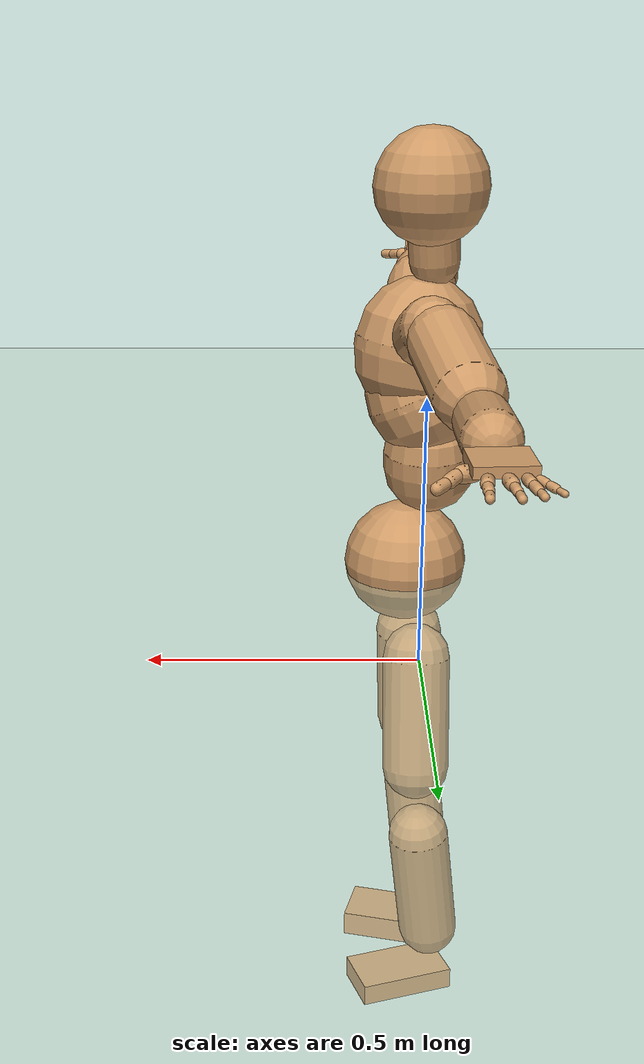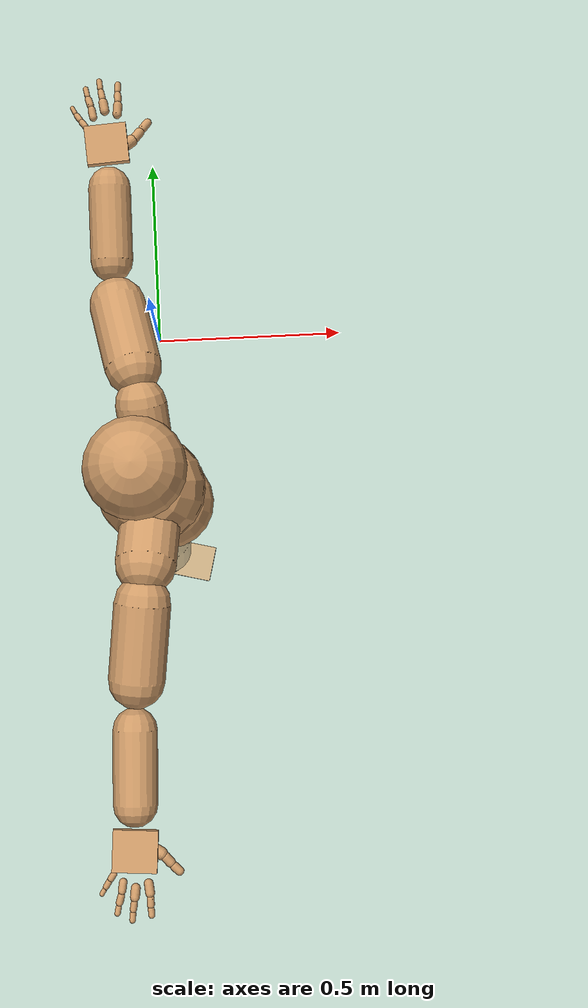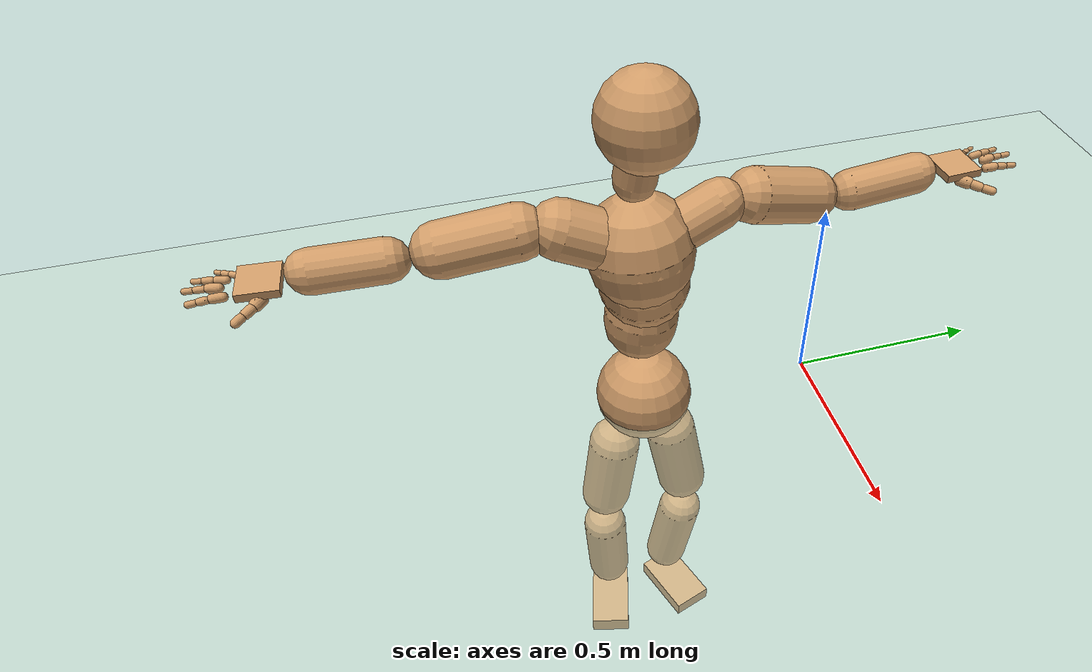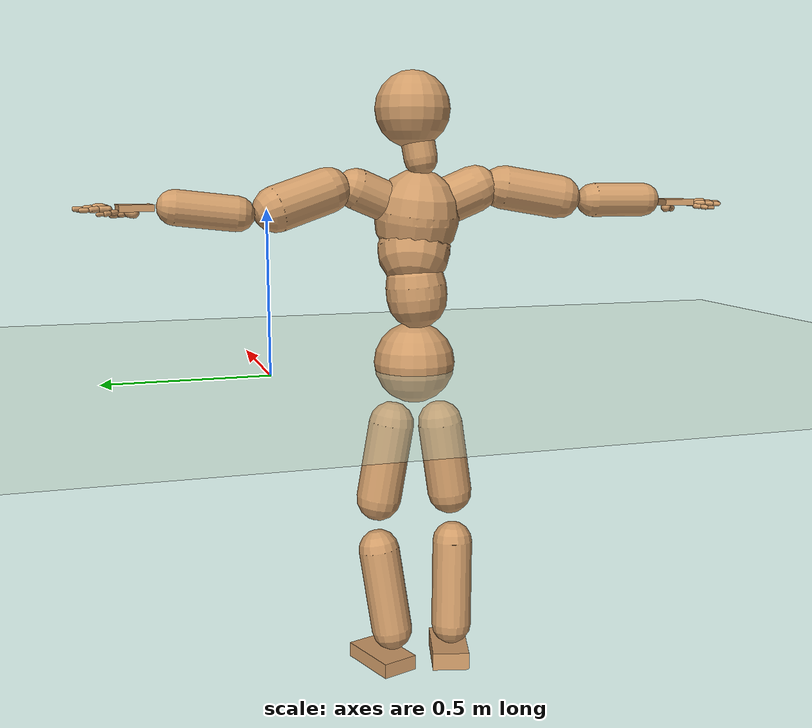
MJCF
<mujoco model="humanoid">
  <compiler coordinate="local" angle="radian"/>
  <default>
    <joint damping="0.0" armature="0.01" stiffness="0.0" limited="true"/>
    <geom conaffinity="1" condim="3" contype="7" margin="0.001" rgba="0.8 0.6 .4 1"/>
  </default>
  <asset>
    <texture type="skybox" builtin="gradient" rgb1=".4 .5 .6" rgb2="0 0 0" width="100" height="100"/>
    <texture builtin="flat" height="1278" mark="cross" markrgb="1 1 1" name="texgeom" random="0.01" rgb1="0.8 0.6 0.4" rgb2="0.8 0.6 0.4" type="cube" width="127"/>
    <texture builtin="checker" height="100" name="texplane" rgb1="0 0 0" rgb2="0.8 0.8 0.8" type="2d" width="100"/>
    <material name="MatPlane" reflectance="0.5" shininess="1" specular="1" texrepeat="60 60" texture="texplane"/>
    <material name="geom" texture="texgeom" texuniform="true"/>
  </asset>
  <worldbody>
    <light cutoff="100" diffuse="1 1 1" dir="-0 0 -1.3" directional="true" exponent="1" pos="0 0 1.3" specular=".1 .1 .1"/>
    <geom conaffinity="1" condim="3" name="floor" pos="0 0 0" rgba="0.8 0.9 0.8 1" size="100 100 .2" type="plane" material="MatPlane"/>
    <body name="Pelvis" pos="0.0019 -0.4553 0.0202">
      <freejoint name="Pelvis"/>
      <geom type="sphere" contype="1" conaffinity="1" density="500" size="0.1269" pos="0.0000 0.0000 0.0000" name="Pelvis"/>
      <body name="L_Hip" pos="-0.0236 0.0682 -0.1093">
        <joint name="L_Hip_x" type="hinge" pos="0 0 0" axis="1 0 0" stiffness="800" damping="80" armature="0.02" range="-180.0000 180.0000"/>
        <joint name="L_Hip_y" type="hinge" pos="0 0 0" axis="0 1 0" stiffness="800" damping="80" armature="0.02" range="-180.0000 180.0000"/>
        <joint name="L_Hip_z" type="hinge" pos="0 0 0" axis="0 0 1" stiffness="800" damping="80" armature="0.02" range="-180.0000 180.0000"/>
        <geom type="capsule" contype="1" conaffinity="1" density="500" fromto="-0.0007 0.0142 -0.0795 -0.0027 0.0569 -0.3178" size="0.0708" name="L_Hip"/>
        <body name="L_Knee" pos="-0.0034 0.0712 -0.3973">
          <joint name="L_Knee_x" type="hinge" pos="0 0 0" axis="1 0 0" stiffness="800" damping="80" armature="0.02" range="-180.0000 180.0000"/>
          <joint name="L_Knee_y" type="hinge" pos="0 0 0" axis="0 1 0" stiffness="800" damping="80" armature="0.02" range="-180.0000 180.0000"/>
          <joint name="L_Knee_z" type="hinge" pos="0 0 0" axis="0 0 1" stiffness="800" damping="80" armature="0.02" range="-180.0000 180.0000"/>
          <geom type="capsule" contype="1" conaffinity="1" density="500" fromto="-0.0100 -0.0111 -0.0875 -0.0402 -0.0443 -0.3499" size="0.0644" name="L_Knee"/>
          <body name="L_Ankle" pos="-0.0502 -0.0554 -0.4373">
            <joint name="L_Ankle_x" type="hinge" pos="0 0 0" axis="1 0 0" stiffness="800" damping="80" armature="0.02" range="-180.0000 180.0000"/>
            <joint name="L_Ankle_y" type="hinge" pos="0 0 0" axis="0 1 0" stiffness="800" damping="80" armature="0.02" range="-180.0000 180.0000"/>
            <joint name="L_Ankle_z" type="hinge" pos="0 0 0" axis="0 0 1" stiffness="800" damping="80" armature="0.02" range="-180.0000 180.0000"/>
            <geom type="box" contype="1" conaffinity="1" density="500" pos="0.0745 0.0256 -0.0319" size="0.1034 0.0592 0.0237" quat="0.9864 0.0000 0.0000 0.1645" name="L_Ankle"/>
            <body name="L_Toe" pos="0.1489 0.0511 -0.0639">
              <joint name="L_Toe_x" type="hinge" pos="0 0 0" axis="1 0 0" stiffness="500" damping="50" armature="0.02" range="-180.0000 180.0000"/>
              <joint name="L_Toe_y" type="hinge" pos="0 0 0" axis="0 1 0" stiffness="500" damping="50" armature="0.02" range="-180.0000 180.0000"/>
              <joint name="L_Toe_z" type="hinge" pos="0 0 0" axis="0 0 1" stiffness="500" damping="50" armature="0.02" range="-180.0000 180.0000"/>
              <geom type="box" contype="1" conaffinity="1" density="500" pos="0.0000 0.0000 0.0317" size="0.0012 0.0028 0.0012" quat="0.9857 0.0000 0.0000 0.1684" name="L_Toe"/>
            </body>
          </body>
        </body>
      </body>
      <body name="R_Hip" pos="-0.0147 -0.0708 -0.1215">
        <joint name="R_Hip_x" type="hinge" pos="0 0 0" axis="1 0 0" stiffness="800" damping="80" armature="0.02" range="-180.0000 180.0000"/>
        <joint name="R_Hip_y" type="hinge" pos="0 0 0" axis="0 1 0" stiffness="800" damping="80" armature="0.02" range="-180.0000 180.0000"/>
        <joint name="R_Hip_z" type="hinge" pos="0 0 0" axis="0 0 1" stiffness="800" damping="80" armature="0.02" range="-180.0000 180.0000"/>
        <geom type="capsule" contype="1" conaffinity="1" density="500" fromto="-0.0027 -0.0103 -0.0758 -0.0106 -0.0413 -0.3033" size="0.0708" name="R_Hip"/>
        <body name="R_Knee" pos="-0.0133 -0.0517 -0.3792">
          <joint name="R_Knee_x" type="hinge" pos="0 0 0" axis="1 0 0" stiffness="800" damping="80" armature="0.02" range="-180.0000 180.0000"/>
          <joint name="R_Knee_y" type="hinge" pos="0 0 0" axis="0 1 0" stiffness="800" damping="80" armature="0.02" range="-180.0000 180.0000"/>
          <joint name="R_Knee_z" type="hinge" pos="0 0 0" axis="0 0 1" stiffness="800" damping="80" armature="0.02" range="-180.0000 180.0000"/>
          <geom type="capsule" contype="1" conaffinity="1" density="500" fromto="-0.0097 0.0041 -0.0902 -0.0387 0.0166 -0.3608" size="0.0643" name="R_Knee"/>
          <body name="R_Ankle" pos="-0.0484 0.0207 -0.451">
            <joint name="R_Ankle_x" type="hinge" pos="0 0 0" axis="1 0 0" stiffness="800" damping="80" armature="0.02" range="-180.0000 180.0000"/>
            <joint name="R_Ankle_y" type="hinge" pos="0 0 0" axis="0 1 0" stiffness="800" damping="80" armature="0.02" range="-180.0000 180.0000"/>
            <joint name="R_Ankle_z" type="hinge" pos="0 0 0" axis="0 0 1" stiffness="800" damping="80" armature="0.02" range="-180.0000 180.0000"/>
            <geom type="box" contype="1" conaffinity="1" density="500" pos="0.0780 -0.0197 -0.0312" size="0.1035 0.0592 0.0284" quat="0.9923 0.0000 0.0000 -0.1237" name="R_Ankle"/>
            <body name="R_Toe" pos="0.1559 -0.0395 -0.0623">
              <joint name="R_Toe_x" type="hinge" pos="0 0 0" axis="1 0 0" stiffness="500" damping="50" armature="0.02" range="-180.0000 180.0000"/>
              <joint name="R_Toe_y" type="hinge" pos="0 0 0" axis="0 1 0" stiffness="500" damping="50" armature="0.02" range="-180.0000 180.0000"/>
              <joint name="R_Toe_z" type="hinge" pos="0 0 0" axis="0 0 1" stiffness="500" damping="50" armature="0.02" range="-180.0000 180.0000"/>
              <geom type="box" contype="1" conaffinity="1" density="500" pos="0.0000 0.0000 0.0262" size="0.0011 0.0028 0.0012" quat="0.9932 0.0000 0.0000 -0.1162" name="R_Toe"/>
            </body>
          </body>
        </body>
      </body>
      <body name="Torso" pos="-0.0468 -0.0027 0.1324">
        <joint name="Torso_x" type="hinge" pos="0 0 0" axis="1 0 0" stiffness="1000" damping="100" armature="0.02" range="-180.0000 180.0000"/>
        <joint name="Torso_y" type="hinge" pos="0 0 0" axis="0 1 0" stiffness="1000" damping="100" armature="0.02" range="-180.0000 180.0000"/>
        <joint name="Torso_z" type="hinge" pos="0 0 0" axis="0 0 1" stiffness="1000" damping="100" armature="0.02" range="-180.0000 180.0000"/>
        <geom type="capsule" contype="1" conaffinity="1" density="500" fromto="0.0036 0.0107 0.1130 0.0024 0.0071 0.0754" size="0.0935" name="Torso"/>
        <body name="Spine" pos="0.006 0.0178 0.1884">
          <joint name="Spine_x" type="hinge" pos="0 0 0" axis="1 0 0" stiffness="1000" damping="100" armature="0.02" range="-180.0000 180.0000"/>
          <joint name="Spine_y" type="hinge" pos="0 0 0" axis="0 1 0" stiffness="1000" damping="100" armature="0.02" range="-180.0000 180.0000"/>
          <joint name="Spine_z" type="hinge" pos="0 0 0" axis="0 0 1" stiffness="1000" damping="100" armature="0.02" range="-180.0000 180.0000"/>
          <geom type="capsule" contype="1" conaffinity="1" density="500" fromto="0.0193 -0.0080 0.0424 0.0129 -0.0053 0.0283" size="0.1122" name="Spine"/>
          <body name="Chest" pos="0.0322 -0.0133 0.0707">
            <joint name="Chest_x" type="hinge" pos="0 0 0" axis="1 0 0" stiffness="1000" damping="100" armature="0.02" range="-180.0000 180.0000"/>
            <joint name="Chest_y" type="hinge" pos="0 0 0" axis="0 1 0" stiffness="1000" damping="100" armature="0.02" range="-180.0000 180.0000"/>
            <joint name="Chest_z" type="hinge" pos="0 0 0" axis="0 0 1" stiffness="1000" damping="100" armature="0.02" range="-180.0000 180.0000"/>
            <geom type="capsule" contype="1" conaffinity="1" density="500" fromto="-0.0102 -0.0048 0.0763 -0.0068 -0.0032 0.0509" size="0.1299" name="Chest"/>
            <body name="Neck" pos="-0.0375 -0.0144 0.1997">
              <joint name="Neck_x" type="hinge" pos="0 0 0" axis="1 0 0" stiffness="500" damping="50" armature="0.02" range="-180.0000 180.0000"/>
              <joint name="Neck_y" type="hinge" pos="0 0 0" axis="0 1 0" stiffness="500" damping="50" armature="0.02" range="-180.0000 180.0000"/>
              <joint name="Neck_z" type="hinge" pos="0 0 0" axis="0 0 1" stiffness="500" damping="50" armature="0.02" range="-180.0000 180.0000"/>
              <geom type="capsule" contype="1" conaffinity="1" density="500" fromto="0.0029 0.0056 0.0363 0.0118 0.0224 0.1453" size="0.051" name="Neck"/>
              <body name="Head" pos="0.0147 0.028 0.1817">
                <joint name="Head_x" type="hinge" pos="0 0 0" axis="1 0 0" stiffness="500" damping="50" armature="0.02" range="-180.0000 180.0000"/>
                <joint name="Head_y" type="hinge" pos="0 0 0" axis="0 1 0" stiffness="500" damping="50" armature="0.02" range="-180.0000 180.0000"/>
                <joint name="Head_z" type="hinge" pos="0 0 0" axis="0 0 1" stiffness="500" damping="50" armature="0.02" range="-180.0000 180.0000"/>
                <geom type="sphere" contype="1" conaffinity="1" density="500" size="0.1137" pos="0.0000 0.0000 0.0000" name="Head"/>
              </body>
            </body>
            <body name="L_Thorax" pos="-0.0054 0.0493 0.0905">
              <joint name="L_Thorax_x" type="hinge" pos="0 0 0" axis="1 0 0" stiffness="500" damping="50" armature="0.02" range="-180.0000 180.0000"/>
              <joint name="L_Thorax_y" type="hinge" pos="0 0 0" axis="0 1 0" stiffness="500" damping="50" armature="0.02" range="-180.0000 180.0000"/>
              <joint name="L_Thorax_z" type="hinge" pos="0 0 0" axis="0 0 1" stiffness="500" damping="50" armature="0.02" range="-180.0000 180.0000"/>
              <geom type="capsule" contype="1" conaffinity="1" density="500" fromto="-0.0032 0.0347 0.0143 -0.0130 0.1390 0.0572" size="0.0611" name="L_Thorax"/>
              <body name="L_Shoulder" pos="-0.0162 0.1737 0.0715">
                <joint name="L_Shoulder_x" type="hinge" pos="0 0 0" axis="1 0 0" stiffness="500" damping="50" armature="0.02" range="-180.0000 180.0000"/>
                <joint name="L_Shoulder_y" type="hinge" pos="0 0 0" axis="0 1 0" stiffness="500" damping="50" armature="0.02" range="-180.0000 180.0000"/>
                <joint name="L_Shoulder_z" type="hinge" pos="0 0 0" axis="0 0 1" stiffness="500" damping="50" armature="0.02" range="-180.0000 180.0000"/>
                <geom type="capsule" contype="1" conaffinity="1" density="500" fromto="-0.0116 0.0543 -0.0177 -0.0464 0.2171 -0.0709" size="0.0675" name="L_Shoulder"/>
                <body name="L_Elbow" pos="-0.058 0.2714 -0.0886">
                  <joint name="L_Elbow_x" type="hinge" pos="0 0 0" axis="1 0 0" stiffness="500" damping="50" armature="0.02" range="-720.0000 720.0000"/>
                  <joint name="L_Elbow_y" type="hinge" pos="0 0 0" axis="0 1 0" stiffness="500" damping="50" armature="0.02" range="-720.0000 720.0000"/>
                  <joint name="L_Elbow_z" type="hinge" pos="0 0 0" axis="0 0 1" stiffness="500" damping="50" armature="0.02" range="-720.0000 720.0000"/>
                  <geom type="capsule" contype="1" conaffinity="1" density="500" fromto="0.0010 0.0580 0.0065 0.0038 0.2319 0.0260" size="0.051" name="L_Elbow"/>
                  <body name="L_Wrist" pos="0.0048 0.2899 0.0324">
                    <joint name="L_Wrist_x" type="hinge" pos="0 0 0" axis="1 0 0" stiffness="300" damping="30" armature="0.02" range="-180.0000 180.0000"/>
                    <joint name="L_Wrist_y" type="hinge" pos="0 0 0" axis="0 1 0" stiffness="300" damping="30" armature="0.02" range="-180.0000 180.0000"/>
                    <joint name="L_Wrist_z" type="hinge" pos="0 0 0" axis="0 0 1" stiffness="300" damping="30" armature="0.02" range="-180.0000 180.0000"/>
                    <geom type="box" contype="1" conaffinity="1" density="500" pos="-0.0033 0.0509 -0.0060" size="0.0481 0.0508 0.0095" quat="0.7298 0.0000 0.0000 -0.6837" name="L_Wrist"/>
                    <body name="L_Index1" pos="0.024 0.1195 -0.0086">
                      <joint name="L_Index1_x" type="hinge" pos="0 0 0" axis="1 0 0" stiffness="100" damping="10" armature="0.02" range="-180.0000 180.0000"/>
                      <joint name="L_Index1_y" type="hinge" pos="0 0 0" axis="0 1 0" stiffness="100" damping="10" armature="0.02" range="-180.0000 180.0000"/>
                      <joint name="L_Index1_z" type="hinge" pos="0 0 0" axis="0 0 1" stiffness="100" damping="10" armature="0.02" range="-180.0000 180.0000"/>
                      <geom type="capsule" contype="1" conaffinity="1" density="500" fromto="0.0008 0.0071 0.0004 0.0032 0.0285 0.0017" size="0.0108" name="L_Index1"/>
                      <body name="L_Index2" pos="0.004 0.0357 0.0022">
                        <joint name="L_Index2_x" type="hinge" pos="0 0 0" axis="1 0 0" stiffness="100" damping="10" armature="0.02" range="-180.0000 180.0000"/>
                        <joint name="L_Index2_y" type="hinge" pos="0 0 0" axis="0 1 0" stiffness="100" damping="10" armature="0.02" range="-180.0000 180.0000"/>
                        <joint name="L_Index2_z" type="hinge" pos="0 0 0" axis="0 0 1" stiffness="100" damping="10" armature="0.02" range="-180.0000 180.0000"/>
                        <geom type="capsule" contype="1" conaffinity="1" density="500" fromto="-0.0001 0.0050 -0.0006 -0.0003 0.0200 -0.0024" size="0.0087" name="L_Index2"/>
                        <body name="L_Index3" pos="-0.0003 0.025 -0.003">
                          <joint name="L_Index3_x" type="hinge" pos="0 0 0" axis="1 0 0" stiffness="100" damping="10" armature="0.02" range="-180.0000 180.0000"/>
                          <joint name="L_Index3_y" type="hinge" pos="0 0 0" axis="0 1 0" stiffness="100" damping="10" armature="0.02" range="-180.0000 180.0000"/>
                          <joint name="L_Index3_z" type="hinge" pos="0 0 0" axis="0 0 1" stiffness="100" damping="10" armature="0.02" range="-180.0000 180.0000"/>
                          <geom type="capsule" contype="1" conaffinity="1" density="500" fromto="0.0003 0.0054 -0.0002 0.0013 0.0216 -0.0008" size="0.0073" name="L_Index3"/>
                        </body>
                      </body>
                    </body>
                    <body name="L_Middle1" pos="-0.0041 0.1282 -0.0049">
                      <joint name="L_Middle1_x" type="hinge" pos="0 0 0" axis="1 0 0" stiffness="100" damping="10" armature="0.02" range="-180.0000 180.0000"/>
                      <joint name="L_Middle1_y" type="hinge" pos="0 0 0" axis="0 1 0" stiffness="100" damping="10" armature="0.02" range="-180.0000 180.0000"/>
                      <joint name="L_Middle1_z" type="hinge" pos="0 0 0" axis="0 0 1" stiffness="100" damping="10" armature="0.02" range="-180.0000 180.0000"/>
                      <geom type="capsule" contype="1" conaffinity="1" density="500" fromto="-0.0009 0.0068 0.0002 -0.0038 0.0271 0.0007" size="0.011" name="L_Middle1"/>
                      <body name="L_Middle2" pos="-0.0047 0.0339 0.0009">
                        <joint name="L_Middle2_x" type="hinge" pos="0 0 0" axis="1 0 0" stiffness="100" damping="10" armature="0.02" range="-180.0000 180.0000"/>
                        <joint name="L_Middle2_y" type="hinge" pos="0 0 0" axis="0 1 0" stiffness="100" damping="10" armature="0.02" range="-180.0000 180.0000"/>
                        <joint name="L_Middle2_z" type="hinge" pos="0 0 0" axis="0 0 1" stiffness="100" damping="10" armature="0.02" range="-180.0000 180.0000"/>
                        <geom type="capsule" contype="1" conaffinity="1" density="500" fromto="-0.0009 0.0052 -0.0006 -0.0037 0.0207 -0.0022" size="0.008" name="L_Middle2"/>
                        <body name="L_Middle3" pos="-0.0047 0.0259 -0.0028">
                          <joint name="L_Middle3_x" type="hinge" pos="0 0 0" axis="1 0 0" stiffness="100" damping="10" armature="0.02" range="-180.0000 180.0000"/>
                          <joint name="L_Middle3_y" type="hinge" pos="0 0 0" axis="0 1 0" stiffness="100" damping="10" armature="0.02" range="-180.0000 180.0000"/>
                          <joint name="L_Middle3_z" type="hinge" pos="0 0 0" axis="0 0 1" stiffness="100" damping="10" armature="0.02" range="-180.0000 180.0000"/>
                          <geom type="capsule" contype="1" conaffinity="1" density="500" fromto="-0.0005 0.0056 -0.0002 -0.0021 0.0223 -0.0006" size="0.007" name="L_Middle3"/>
                        </body>
                      </body>
                    </body>
                    <body name="L_Pinky1" pos="-0.0523 0.0991 -0.0153">
                      <joint name="L_Pinky1_x" type="hinge" pos="0 0 0" axis="1 0 0" stiffness="100" damping="10" armature="0.02" range="-180.0000 180.0000"/>
                      <joint name="L_Pinky1_y" type="hinge" pos="0 0 0" axis="0 1 0" stiffness="100" damping="10" armature="0.02" range="-180.0000 180.0000"/>
                      <joint name="L_Pinky1_z" type="hinge" pos="0 0 0" axis="0 0 1" stiffness="100" damping="10" armature="0.02" range="-180.0000 180.0000"/>
                      <geom type="capsule" contype="1" conaffinity="1" density="500" fromto="-0.0026 0.0037 -0.0004 -0.0102 0.0146 -0.0017" size="0.0077" name="L_Pinky1"/>
                      <body name="L_Pinky2" pos="-0.0128 0.0183 -0.0021">
                        <joint name="L_Pinky2_x" type="hinge" pos="0 0 0" axis="1 0 0" stiffness="100" damping="10" armature="0.02" range="-180.0000 180.0000"/>
                        <joint name="L_Pinky2_y" type="hinge" pos="0 0 0" axis="0 1 0" stiffness="100" damping="10" armature="0.02" range="-180.0000 180.0000"/>
                        <joint name="L_Pinky2_z" type="hinge" pos="0 0 0" axis="0 0 1" stiffness="100" damping="10" armature="0.02" range="-180.0000 180.0000"/>
                        <geom type="capsule" contype="1" conaffinity="1" density="500" fromto="-0.0024 0.0036 -0.0005 -0.0094 0.0143 -0.0020" size="0.0072" name="L_Pinky2"/>
                        <body name="L_Pinky3" pos="-0.0118 0.0179 -0.0025">
                          <joint name="L_Pinky3_x" type="hinge" pos="0 0 0" axis="1 0 0" stiffness="100" damping="10" armature="0.02" range="-180.0000 180.0000"/>
                          <joint name="L_Pinky3_y" type="hinge" pos="0 0 0" axis="0 1 0" stiffness="100" damping="10" armature="0.02" range="-180.0000 180.0000"/>
                          <joint name="L_Pinky3_z" type="hinge" pos="0 0 0" axis="0 0 1" stiffness="100" damping="10" armature="0.02" range="-180.0000 180.0000"/>
                          <geom type="capsule" contype="1" conaffinity="1" density="500" fromto="-0.0020 0.0040 -0.0001 -0.0078 0.0159 -0.0004" size="0.0054" name="L_Pinky3"/>
                        </body>
                      </body>
                    </body>
                    <body name="L_Ring1" pos="-0.0326 0.1146 -0.0083">
                      <joint name="L_Ring1_x" type="hinge" pos="0 0 0" axis="1 0 0" stiffness="100" damping="10" armature="0.02" range="-180.0000 180.0000"/>
                      <joint name="L_Ring1_y" type="hinge" pos="0 0 0" axis="0 1 0" stiffness="100" damping="10" armature="0.02" range="-180.0000 180.0000"/>
                      <joint name="L_Ring1_z" type="hinge" pos="0 0 0" axis="0 0 1" stiffness="100" damping="10" armature="0.02" range="-180.0000 180.0000"/>
                      <geom type="capsule" contype="1" conaffinity="1" density="500" fromto="-0.0011 0.0064 0.0002 -0.0043 0.0255 0.0009" size="0.0093" name="L_Ring1"/>
                      <body name="L_Ring2" pos="-0.0054 0.0319 0.0011">
                        <joint name="L_Ring2_x" type="hinge" pos="0 0 0" axis="1 0 0" stiffness="100" damping="10" armature="0.02" range="-180.0000 180.0000"/>
                        <joint name="L_Ring2_y" type="hinge" pos="0 0 0" axis="0 1 0" stiffness="100" damping="10" armature="0.02" range="-180.0000 180.0000"/>
                        <joint name="L_Ring2_z" type="hinge" pos="0 0 0" axis="0 0 1" stiffness="100" damping="10" armature="0.02" range="-180.0000 180.0000"/>
                        <geom type="capsule" contype="1" conaffinity="1" density="500" fromto="-0.0015 0.0051 -0.0005 -0.0058 0.0204 -0.0020" size="0.0085" name="L_Ring2"/>
                        <body name="L_Ring3" pos="-0.0073 0.0255 -0.0026">
                          <joint name="L_Ring3_x" type="hinge" pos="0 0 0" axis="1 0 0" stiffness="100" damping="10" armature="0.02" range="-180.0000 180.0000"/>
                          <joint name="L_Ring3_y" type="hinge" pos="0 0 0" axis="0 1 0" stiffness="100" damping="10" armature="0.02" range="-180.0000 180.0000"/>
                          <joint name="L_Ring3_z" type="hinge" pos="0 0 0" axis="0 0 1" stiffness="100" damping="10" armature="0.02" range="-180.0000 180.0000"/>
                          <geom type="capsule" contype="1" conaffinity="1" density="500" fromto="-0.0011 0.0055 -0.0001 -0.0042 0.0220 -0.0004" size="0.0065" name="L_Ring3"/>
                        </body>
                      </body>
                    </body>
                    <body name="L_Thumb1" pos="0.0318 0.0475 -0.0226">
                      <joint name="L_Thumb1_x" type="hinge" pos="0 0 0" axis="1 0 0" stiffness="100" damping="10" armature="0.02" range="-180.0000 180.0000"/>
                      <joint name="L_Thumb1_y" type="hinge" pos="0 0 0" axis="0 1 0" stiffness="100" damping="10" armature="0.02" range="-180.0000 180.0000"/>
                      <joint name="L_Thumb1_z" type="hinge" pos="0 0 0" axis="0 0 1" stiffness="100" damping="10" armature="0.02" range="-180.0000 180.0000"/>
                      <geom type="capsule" contype="1" conaffinity="1" density="500" fromto="0.0060 0.0038 0.0005 0.0241 0.0152 0.0021" size="0.0148" name="L_Thumb1"/>
                      <body name="L_Thumb2" pos="0.0301 0.0189 0.0026">
                        <joint name="L_Thumb2_x" type="hinge" pos="0 0 0" axis="1 0 0" stiffness="100" damping="10" armature="0.02" range="-180.0000 180.0000"/>
                        <joint name="L_Thumb2_y" type="hinge" pos="0 0 0" axis="0 1 0" stiffness="100" damping="10" armature="0.02" range="-180.0000 180.0000"/>
                        <joint name="L_Thumb2_z" type="hinge" pos="0 0 0" axis="0 0 1" stiffness="100" damping="10" armature="0.02" range="-180.0000 180.0000"/>
                        <geom type="capsule" contype="1" conaffinity="1" density="500" fromto="0.0036 0.0046 -0.0010 0.0146 0.0183 -0.0042" size="0.0116" name="L_Thumb2"/>
                        <body name="L_Thumb3" pos="0.0182 0.0229 -0.0052">
                          <joint name="L_Thumb3_x" type="hinge" pos="0 0 0" axis="1 0 0" stiffness="100" damping="10" armature="0.02" range="-180.0000 180.0000"/>
                          <joint name="L_Thumb3_y" type="hinge" pos="0 0 0" axis="0 1 0" stiffness="100" damping="10" armature="0.02" range="-180.0000 180.0000"/>
                          <joint name="L_Thumb3_z" type="hinge" pos="0 0 0" axis="0 0 1" stiffness="100" damping="10" armature="0.02" range="-180.0000 180.0000"/>
                          <geom type="capsule" contype="1" conaffinity="1" density="500" fromto="0.0040 0.0050 -0.0006 0.0162 0.0199 -0.0026" size="0.0102" name="L_Thumb3"/>
                        </body>
                      </body>
                    </body>
                  </body>
                </body>
              </body>
            </body>
            <body name="R_Thorax" pos="-0.0081 -0.0587 0.0913">
              <joint name="R_Thorax_x" type="hinge" pos="0 0 0" axis="1 0 0" stiffness="500" damping="50" armature="0.02" range="-180.0000 180.0000"/>
              <joint name="R_Thorax_y" type="hinge" pos="0 0 0" axis="0 1 0" stiffness="500" damping="50" armature="0.02" range="-180.0000 180.0000"/>
              <joint name="R_Thorax_z" type="hinge" pos="0 0 0" axis="0 0 1" stiffness="500" damping="50" armature="0.02" range="-180.0000 180.0000"/>
              <geom type="capsule" contype="1" conaffinity="1" density="500" fromto="-0.0037 -0.0318 0.0137 -0.0148 -0.1272 0.0549" size="0.0719" name="R_Thorax"/>
              <body name="R_Shoulder" pos="-0.0186 -0.159 0.0687">
                <joint name="R_Shoulder_x" type="hinge" pos="0 0 0" axis="1 0 0" stiffness="500" damping="50" armature="0.02" range="-180.0000 180.0000"/>
                <joint name="R_Shoulder_y" type="hinge" pos="0 0 0" axis="0 1 0" stiffness="500" damping="50" armature="0.02" range="-180.0000 180.0000"/>
                <joint name="R_Shoulder_z" type="hinge" pos="0 0 0" axis="0 0 1" stiffness="500" damping="50" armature="0.02" range="-180.0000 180.0000"/>
                <geom type="capsule" contype="1" conaffinity="1" density="500" fromto="-0.0075 -0.0587 -0.0099 -0.0299 -0.2349 -0.0398" size="0.0668" name="R_Shoulder"/>
                <body name="R_Elbow" pos="-0.0374 -0.2936 -0.0497">
                  <joint name="R_Elbow_x" type="hinge" pos="0 0 0" axis="1 0 0" stiffness="500" damping="50" armature="0.02" range="-720.0000 720.0000"/>
                  <joint name="R_Elbow_y" type="hinge" pos="0 0 0" axis="0 1 0" stiffness="500" damping="50" armature="0.02" range="-720.0000 720.0000"/>
                  <joint name="R_Elbow_z" type="hinge" pos="0 0 0" axis="0 0 1" stiffness="500" damping="50" armature="0.02" range="-720.0000 720.0000"/>
                  <geom type="capsule" contype="1" conaffinity="1" density="500" fromto="-0.0020 -0.0563 -0.0000 -0.0080 -0.2251 -0.0002" size="0.0523" name="R_Elbow"/>
                  <body name="R_Wrist" pos="-0.01 -0.2814 -0.0002">
                    <joint name="R_Wrist_x" type="hinge" pos="0 0 0" axis="1 0 0" stiffness="300" damping="30" armature="0.02" range="-180.0000 180.0000"/>
                    <joint name="R_Wrist_y" type="hinge" pos="0 0 0" axis="0 1 0" stiffness="300" damping="30" armature="0.02" range="-180.0000 180.0000"/>
                    <joint name="R_Wrist_z" type="hinge" pos="0 0 0" axis="0 0 1" stiffness="300" damping="30" armature="0.02" range="-180.0000 180.0000"/>
                    <geom type="box" contype="1" conaffinity="1" density="500" pos="-0.0037 -0.0505 -0.0081" size="0.0481 0.0522 0.0098" quat="0.7328 0.0000 0.0000 0.6804" name="R_Wrist"/>
                    <body name="R_Index1" pos="0.0231 -0.1186 -0.0129">
                      <joint name="R_Index1_x" type="hinge" pos="0 0 0" axis="1 0 0" stiffness="100" damping="10" armature="0.02" range="-180.0000 180.0000"/>
                      <joint name="R_Index1_y" type="hinge" pos="0 0 0" axis="0 1 0" stiffness="100" damping="10" armature="0.02" range="-180.0000 180.0000"/>
                      <joint name="R_Index1_z" type="hinge" pos="0 0 0" axis="0 0 1" stiffness="100" damping="10" armature="0.02" range="-180.0000 180.0000"/>
                      <geom type="capsule" contype="1" conaffinity="1" density="500" fromto="0.0008 -0.0071 0.0004 0.0032 -0.0285 0.0017" size="0.0108" name="R_Index1"/>
                      <body name="R_Index2" pos="0.004 -0.0357 0.0022">
                        <joint name="R_Index2_x" type="hinge" pos="0 0 0" axis="1 0 0" stiffness="100" damping="10" armature="0.02" range="-180.0000 180.0000"/>
                        <joint name="R_Index2_y" type="hinge" pos="0 0 0" axis="0 1 0" stiffness="100" damping="10" armature="0.02" range="-180.0000 180.0000"/>
                        <joint name="R_Index2_z" type="hinge" pos="0 0 0" axis="0 0 1" stiffness="100" damping="10" armature="0.02" range="-180.0000 180.0000"/>
                        <geom type="capsule" contype="1" conaffinity="1" density="500" fromto="-0.0001 -0.0050 -0.0006 -0.0003 -0.0200 -0.0024" size="0.0087" name="R_Index2"/>
                        <body name="R_Index3" pos="-0.0003 -0.025 -0.003">
                          <joint name="R_Index3_x" type="hinge" pos="0 0 0" axis="1 0 0" stiffness="100" damping="10" armature="0.02" range="-180.0000 180.0000"/>
                          <joint name="R_Index3_y" type="hinge" pos="0 0 0" axis="0 1 0" stiffness="100" damping="10" armature="0.02" range="-180.0000 180.0000"/>
                          <joint name="R_Index3_z" type="hinge" pos="0 0 0" axis="0 0 1" stiffness="100" damping="10" armature="0.02" range="-180.0000 180.0000"/>
                          <geom type="capsule" contype="1" conaffinity="1" density="500" fromto="0.0003 -0.0046 -0.0002 0.0013 -0.0184 -0.0008" size="0.0076" name="R_Index3"/>
                        </body>
                      </body>
                    </body>
                    <body name="R_Middle1" pos="-0.005 -0.1273 -0.0092">
                      <joint name="R_Middle1_x" type="hinge" pos="0 0 0" axis="1 0 0" stiffness="100" damping="10" armature="0.02" range="-180.0000 180.0000"/>
                      <joint name="R_Middle1_y" type="hinge" pos="0 0 0" axis="0 1 0" stiffness="100" damping="10" armature="0.02" range="-180.0000 180.0000"/>
                      <joint name="R_Middle1_z" type="hinge" pos="0 0 0" axis="0 0 1" stiffness="100" damping="10" armature="0.02" range="-180.0000 180.0000"/>
                      <geom type="capsule" contype="1" conaffinity="1" density="500" fromto="-0.0009 -0.0068 0.0002 -0.0038 -0.0271 0.0007" size="0.011" name="R_Middle1"/>
                      <body name="R_Middle2" pos="-0.0047 -0.0339 0.0009">
                        <joint name="R_Middle2_x" type="hinge" pos="0 0 0" axis="1 0 0" stiffness="100" damping="10" armature="0.02" range="-180.0000 180.0000"/>
                        <joint name="R_Middle2_y" type="hinge" pos="0 0 0" axis="0 1 0" stiffness="100" damping="10" armature="0.02" range="-180.0000 180.0000"/>
                        <joint name="R_Middle2_z" type="hinge" pos="0 0 0" axis="0 0 1" stiffness="100" damping="10" armature="0.02" range="-180.0000 180.0000"/>
                        <geom type="capsule" contype="1" conaffinity="1" density="500" fromto="-0.0009 -0.0052 -0.0006 -0.0037 -0.0207 -0.0022" size="0.008" name="R_Middle2"/>
                        <body name="R_Middle3" pos="-0.0047 -0.0259 -0.0028">
                          <joint name="R_Middle3_x" type="hinge" pos="0 0 0" axis="1 0 0" stiffness="100" damping="10" armature="0.02" range="-180.0000 180.0000"/>
                          <joint name="R_Middle3_y" type="hinge" pos="0 0 0" axis="0 1 0" stiffness="100" damping="10" armature="0.02" range="-180.0000 180.0000"/>
                          <joint name="R_Middle3_z" type="hinge" pos="0 0 0" axis="0 0 1" stiffness="100" damping="10" armature="0.02" range="-180.0000 180.0000"/>
                          <geom type="capsule" contype="1" conaffinity="1" density="500" fromto="-0.0005 -0.0048 -0.0002 -0.0021 -0.0191 -0.0006" size="0.0072" name="R_Middle3"/>
                        </body>
                      </body>
                    </body>
                    <body name="R_Pinky1" pos="-0.0531 -0.0982 -0.0195">
                      <joint name="R_Pinky1_x" type="hinge" pos="0 0 0" axis="1 0 0" stiffness="100" damping="10" armature="0.02" range="-180.0000 180.0000"/>
                      <joint name="R_Pinky1_y" type="hinge" pos="0 0 0" axis="0 1 0" stiffness="100" damping="10" armature="0.02" range="-180.0000 180.0000"/>
                      <joint name="R_Pinky1_z" type="hinge" pos="0 0 0" axis="0 0 1" stiffness="100" damping="10" armature="0.02" range="-180.0000 180.0000"/>
                      <geom type="capsule" contype="1" conaffinity="1" density="500" fromto="-0.0026 -0.0037 -0.0004 -0.0102 -0.0146 -0.0017" size="0.0077" name="R_Pinky1"/>
                      <body name="R_Pinky2" pos="-0.0128 -0.0183 -0.0021">
                        <joint name="R_Pinky2_x" type="hinge" pos="0 0 0" axis="1 0 0" stiffness="100" damping="10" armature="0.02" range="-180.0000 180.0000"/>
                        <joint name="R_Pinky2_y" type="hinge" pos="0 0 0" axis="0 1 0" stiffness="100" damping="10" armature="0.02" range="-180.0000 180.0000"/>
                        <joint name="R_Pinky2_z" type="hinge" pos="0 0 0" axis="0 0 1" stiffness="100" damping="10" armature="0.02" range="-180.0000 180.0000"/>
                        <geom type="capsule" contype="1" conaffinity="1" density="500" fromto="-0.0024 -0.0036 -0.0005 -0.0094 -0.0143 -0.0020" size="0.0072" name="R_Pinky2"/>
                        <body name="R_Pinky3" pos="-0.0118 -0.0179 -0.0025">
                          <joint name="R_Pinky3_x" type="hinge" pos="0 0 0" axis="1 0 0" stiffness="100" damping="10" armature="0.02" range="-180.0000 180.0000"/>
                          <joint name="R_Pinky3_y" type="hinge" pos="0 0 0" axis="0 1 0" stiffness="100" damping="10" armature="0.02" range="-180.0000 180.0000"/>
                          <joint name="R_Pinky3_z" type="hinge" pos="0 0 0" axis="0 0 1" stiffness="100" damping="10" armature="0.02" range="-180.0000 180.0000"/>
                          <geom type="capsule" contype="1" conaffinity="1" density="500" fromto="-0.0020 -0.0032 -0.0001 -0.0078 -0.0127 -0.0004" size="0.0057" name="R_Pinky3"/>
                        </body>
                      </body>
                    </body>
                    <body name="R_Ring1" pos="-0.0335 -0.1137 -0.0125">
                      <joint name="R_Ring1_x" type="hinge" pos="0 0 0" axis="1 0 0" stiffness="100" damping="10" armature="0.02" range="-180.0000 180.0000"/>
                      <joint name="R_Ring1_y" type="hinge" pos="0 0 0" axis="0 1 0" stiffness="100" damping="10" armature="0.02" range="-180.0000 180.0000"/>
                      <joint name="R_Ring1_z" type="hinge" pos="0 0 0" axis="0 0 1" stiffness="100" damping="10" armature="0.02" range="-180.0000 180.0000"/>
                      <geom type="capsule" contype="1" conaffinity="1" density="500" fromto="-0.0011 -0.0064 0.0002 -0.0043 -0.0255 0.0009" size="0.0093" name="R_Ring1"/>
                      <body name="R_Ring2" pos="-0.0054 -0.0319 0.0011">
                        <joint name="R_Ring2_x" type="hinge" pos="0 0 0" axis="1 0 0" stiffness="100" damping="10" armature="0.02" range="-180.0000 180.0000"/>
                        <joint name="R_Ring2_y" type="hinge" pos="0 0 0" axis="0 1 0" stiffness="100" damping="10" armature="0.02" range="-180.0000 180.0000"/>
                        <joint name="R_Ring2_z" type="hinge" pos="0 0 0" axis="0 0 1" stiffness="100" damping="10" armature="0.02" range="-180.0000 180.0000"/>
                        <geom type="capsule" contype="1" conaffinity="1" density="500" fromto="-0.0015 -0.0051 -0.0005 -0.0058 -0.0204 -0.0020" size="0.0085" name="R_Ring2"/>
                        <body name="R_Ring3" pos="-0.0073 -0.0255 -0.0026">
                          <joint name="R_Ring3_x" type="hinge" pos="0 0 0" axis="1 0 0" stiffness="100" damping="10" armature="0.02" range="-180.0000 180.0000"/>
                          <joint name="R_Ring3_y" type="hinge" pos="0 0 0" axis="0 1 0" stiffness="100" damping="10" armature="0.02" range="-180.0000 180.0000"/>
                          <joint name="R_Ring3_z" type="hinge" pos="0 0 0" axis="0 0 1" stiffness="100" damping="10" armature="0.02" range="-180.0000 180.0000"/>
                          <geom type="capsule" contype="1" conaffinity="1" density="500" fromto="-0.0011 -0.0047 -0.0001 -0.0042 -0.0188 -0.0004" size="0.0068" name="R_Ring3"/>
                        </body>
                      </body>
                    </body>
                    <body name="R_Thumb1" pos="0.031 -0.0466 -0.0268">
                      <joint name="R_Thumb1_x" type="hinge" pos="0 0 0" axis="1 0 0" stiffness="100" damping="10" armature="0.02" range="-180.0000 180.0000"/>
                      <joint name="R_Thumb1_y" type="hinge" pos="0 0 0" axis="0 1 0" stiffness="100" damping="10" armature="0.02" range="-180.0000 180.0000"/>
                      <joint name="R_Thumb1_z" type="hinge" pos="0 0 0" axis="0 0 1" stiffness="100" damping="10" armature="0.02" range="-180.0000 180.0000"/>
                      <geom type="capsule" contype="1" conaffinity="1" density="500" fromto="0.0060 -0.0038 0.0005 0.0241 -0.0152 0.0021" size="0.0148" name="R_Thumb1"/>
                      <body name="R_Thumb2" pos="0.0301 -0.0189 0.0026">
                        <joint name="R_Thumb2_x" type="hinge" pos="0 0 0" axis="1 0 0" stiffness="100" damping="10" armature="0.02" range="-180.0000 180.0000"/>
                        <joint name="R_Thumb2_y" type="hinge" pos="0 0 0" axis="0 1 0" stiffness="100" damping="10" armature="0.02" range="-180.0000 180.0000"/>
                        <joint name="R_Thumb2_z" type="hinge" pos="0 0 0" axis="0 0 1" stiffness="100" damping="10" armature="0.02" range="-180.0000 180.0000"/>
                        <geom type="capsule" contype="1" conaffinity="1" density="500" fromto="0.0036 -0.0046 -0.0010 0.0146 -0.0183 -0.0042" size="0.0116" name="R_Thumb2"/>
                        <body name="R_Thumb3" pos="0.0182 -0.0229 -0.0052">
                          <joint name="R_Thumb3_x" type="hinge" pos="0 0 0" axis="1 0 0" stiffness="100" damping="10" armature="0.02" range="-180.0000 180.0000"/>
                          <joint name="R_Thumb3_y" type="hinge" pos="0 0 0" axis="0 1 0" stiffness="100" damping="10" armature="0.02" range="-180.0000 180.0000"/>
                          <joint name="R_Thumb3_z" type="hinge" pos="0 0 0" axis="0 0 1" stiffness="100" damping="10" armature="0.02" range="-180.0000 180.0000"/>
                          <geom type="capsule" contype="1" conaffinity="1" density="500" fromto="0.0040 -0.0042 -0.0006 0.0162 -0.0167 -0.0026" size="0.0105" name="R_Thumb3"/>
                        </body>
                      </body>
                    </body>
                  </body>
                </body>
              </body>
            </body>
          </body>
        </body>
      </body>
    </body>
  </worldbody>
  <actuator>
    <motor name="L_Hip_x" joint="L_Hip_x" gear="500"/>
    <motor name="L_Hip_y" joint="L_Hip_y" gear="500"/>
    <motor name="L_Hip_z" joint="L_Hip_z" gear="500"/>
    <motor name="L_Knee_x" joint="L_Knee_x" gear="500"/>
    <motor name="L_Knee_y" joint="L_Knee_y" gear="500"/>
    <motor name="L_Knee_z" joint="L_Knee_z" gear="500"/>
    <motor name="L_Ankle_x" joint="L_Ankle_x" gear="500"/>
    <motor name="L_Ankle_y" joint="L_Ankle_y" gear="500"/>
    <motor name="L_Ankle_z" joint="L_Ankle_z" gear="500"/>
    <motor name="L_Toe_x" joint="L_Toe_x" gear="500"/>
    <motor name="L_Toe_y" joint="L_Toe_y" gear="500"/>
    <motor name="L_Toe_z" joint="L_Toe_z" gear="500"/>
    <motor name="R_Hip_x" joint="R_Hip_x" gear="500"/>
    <motor name="R_Hip_y" joint="R_Hip_y" gear="500"/>
    <motor name="R_Hip_z" joint="R_Hip_z" gear="500"/>
    <motor name="R_Knee_x" joint="R_Knee_x" gear="500"/>
    <motor name="R_Knee_y" joint="R_Knee_y" gear="500"/>
    <motor name="R_Knee_z" joint="R_Knee_z" gear="500"/>
    <motor name="R_Ankle_x" joint="R_Ankle_x" gear="500"/>
    <motor name="R_Ankle_y" joint="R_Ankle_y" gear="500"/>
    <motor name="R_Ankle_z" joint="R_Ankle_z" gear="500"/>
    <motor name="R_Toe_x" joint="R_Toe_x" gear="500"/>
    <motor name="R_Toe_y" joint="R_Toe_y" gear="500"/>
    <motor name="R_Toe_z" joint="R_Toe_z" gear="500"/>
    <motor name="Torso_x" joint="Torso_x" gear="500"/>
    <motor name="Torso_y" joint="Torso_y" gear="500"/>
    <motor name="Torso_z" joint="Torso_z" gear="500"/>
    <motor name="Spine_x" joint="Spine_x" gear="500"/>
    <motor name="Spine_y" joint="Spine_y" gear="500"/>
    <motor name="Spine_z" joint="Spine_z" gear="500"/>
    <motor name="Chest_x" joint="Chest_x" gear="500"/>
    <motor name="Chest_y" joint="Chest_y" gear="500"/>
    <motor name="Chest_z" joint="Chest_z" gear="500"/>
    <motor name="Neck_x" joint="Neck_x" gear="500"/>
    <motor name="Neck_y" joint="Neck_y" gear="500"/>
    <motor name="Neck_z" joint="Neck_z" gear="500"/>
    <motor name="Head_x" joint="Head_x" gear="500"/>
    <motor name="Head_y" joint="Head_y" gear="500"/>
    <motor name="Head_z" joint="Head_z" gear="500"/>
    <motor name="L_Thorax_x" joint="L_Thorax_x" gear="500"/>
    <motor name="L_Thorax_y" joint="L_Thorax_y" gear="500"/>
    <motor name="L_Thorax_z" joint="L_Thorax_z" gear="500"/>
    <motor name="L_Shoulder_x" joint="L_Shoulder_x" gear="500"/>
    <motor name="L_Shoulder_y" joint="L_Shoulder_y" gear="500"/>
    <motor name="L_Shoulder_z" joint="L_Shoulder_z" gear="500"/>
    <motor name="L_Elbow_x" joint="L_Elbow_x" gear="500"/>
    <motor name="L_Elbow_y" joint="L_Elbow_y" gear="500"/>
    <motor name="L_Elbow_z" joint="L_Elbow_z" gear="500"/>
    <motor name="L_Wrist_x" joint="L_Wrist_x" gear="500"/>
    <motor name="L_Wrist_y" joint="L_Wrist_y" gear="500"/>
    <motor name="L_Wrist_z" joint="L_Wrist_z" gear="500"/>
    <motor name="L_Index1_x" joint="L_Index1_x" gear="500"/>
    <motor name="L_Index1_y" joint="L_Index1_y" gear="500"/>
    <motor name="L_Index1_z" joint="L_Index1_z" gear="500"/>
    <motor name="L_Index2_x" joint="L_Index2_x" gear="500"/>
    <motor name="L_Index2_y" joint="L_Index2_y" gear="500"/>
    <motor name="L_Index2_z" joint="L_Index2_z" gear="500"/>
    <motor name="L_Index3_x" joint="L_Index3_x" gear="500"/>
    <motor name="L_Index3_y" joint="L_Index3_y" gear="500"/>
    <motor name="L_Index3_z" joint="L_Index3_z" gear="500"/>
    <motor name="L_Middle1_x" joint="L_Middle1_x" gear="500"/>
    <motor name="L_Middle1_y" joint="L_Middle1_y" gear="500"/>
    <motor name="L_Middle1_z" joint="L_Middle1_z" gear="500"/>
    <motor name="L_Middle2_x" joint="L_Middle2_x" gear="500"/>
    <motor name="L_Middle2_y" joint="L_Middle2_y" gear="500"/>
    <motor name="L_Middle2_z" joint="L_Middle2_z" gear="500"/>
    <motor name="L_Middle3_x" joint="L_Middle3_x" gear="500"/>
    <motor name="L_Middle3_y" joint="L_Middle3_y" gear="500"/>
    <motor name="L_Middle3_z" joint="L_Middle3_z" gear="500"/>
    <motor name="L_Pinky1_x" joint="L_Pinky1_x" gear="500"/>
    <motor name="L_Pinky1_y" joint="L_Pinky1_y" gear="500"/>
    <motor name="L_Pinky1_z" joint="L_Pinky1_z" gear="500"/>
    <motor name="L_Pinky2_x" joint="L_Pinky2_x" gear="500"/>
    <motor name="L_Pinky2_y" joint="L_Pinky2_y" gear="500"/>
    <motor name="L_Pinky2_z" joint="L_Pinky2_z" gear="500"/>
    <motor name="L_Pinky3_x" joint="L_Pinky3_x" gear="500"/>
    <motor name="L_Pinky3_y" joint="L_Pinky3_y" gear="500"/>
    <motor name="L_Pinky3_z" joint="L_Pinky3_z" gear="500"/>
    <motor name="L_Ring1_x" joint="L_Ring1_x" gear="500"/>
    <motor name="L_Ring1_y" joint="L_Ring1_y" gear="500"/>
    <motor name="L_Ring1_z" joint="L_Ring1_z" gear="500"/>
    <motor name="L_Ring2_x" joint="L_Ring2_x" gear="500"/>
    <motor name="L_Ring2_y" joint="L_Ring2_y" gear="500"/>
    <motor name="L_Ring2_z" joint="L_Ring2_z" gear="500"/>
    <motor name="L_Ring3_x" joint="L_Ring3_x" gear="500"/>
    <motor name="L_Ring3_y" joint="L_Ring3_y" gear="500"/>
    <motor name="L_Ring3_z" joint="L_Ring3_z" gear="500"/>
    <motor name="L_Thumb1_x" joint="L_Thumb1_x" gear="500"/>
    <motor name="L_Thumb1_y" joint="L_Thumb1_y" gear="500"/>
    <motor name="L_Thumb1_z" joint="L_Thumb1_z" gear="500"/>
    <motor name="L_Thumb2_x" joint="L_Thumb2_x" gear="500"/>
    <motor name="L_Thumb2_y" joint="L_Thumb2_y" gear="500"/>
    <motor name="L_Thumb2_z" joint="L_Thumb2_z" gear="500"/>
    <motor name="L_Thumb3_x" joint="L_Thumb3_x" gear="500"/>
    <motor name="L_Thumb3_y" joint="L_Thumb3_y" gear="500"/>
    <motor name="L_Thumb3_z" joint="L_Thumb3_z" gear="500"/>
    <motor name="R_Thorax_x" joint="R_Thorax_x" gear="500"/>
    <motor name="R_Thorax_y" joint="R_Thorax_y" gear="500"/>
    <motor name="R_Thorax_z" joint="R_Thorax_z" gear="500"/>
    <motor name="R_Shoulder_x" joint="R_Shoulder_x" gear="500"/>
    <motor name="R_Shoulder_y" joint="R_Shoulder_y" gear="500"/>
    <motor name="R_Shoulder_z" joint="R_Shoulder_z" gear="500"/>
    <motor name="R_Elbow_x" joint="R_Elbow_x" gear="500"/>
    <motor name="R_Elbow_y" joint="R_Elbow_y" gear="500"/>
    <motor name="R_Elbow_z" joint="R_Elbow_z" gear="500"/>
    <motor name="R_Wrist_x" joint="R_Wrist_x" gear="500"/>
    <motor name="R_Wrist_y" joint="R_Wrist_y" gear="500"/>
    <motor name="R_Wrist_z" joint="R_Wrist_z" gear="500"/>
    <motor name="R_Index1_x" joint="R_Index1_x" gear="500"/>
    <motor name="R_Index1_y" joint="R_Index1_y" gear="500"/>
    <motor name="R_Index1_z" joint="R_Index1_z" gear="500"/>
    <motor name="R_Index2_x" joint="R_Index2_x" gear="500"/>
    <motor name="R_Index2_y" joint="R_Index2_y" gear="500"/>
    <motor name="R_Index2_z" joint="R_Index2_z" gear="500"/>
    <motor name="R_Index3_x" joint="R_Index3_x" gear="500"/>
    <motor name="R_Index3_y" joint="R_Index3_y" gear="500"/>
    <motor name="R_Index3_z" joint="R_Index3_z" gear="500"/>
    <motor name="R_Middle1_x" joint="R_Middle1_x" gear="500"/>
    <motor name="R_Middle1_y" joint="R_Middle1_y" gear="500"/>
    <motor name="R_Middle1_z" joint="R_Middle1_z" gear="500"/>
    <motor name="R_Middle2_x" joint="R_Middle2_x" gear="500"/>
    <motor name="R_Middle2_y" joint="R_Middle2_y" gear="500"/>
    <motor name="R_Middle2_z" joint="R_Middle2_z" gear="500"/>
    <motor name="R_Middle3_x" joint="R_Middle3_x" gear="500"/>
    <motor name="R_Middle3_y" joint="R_Middle3_y" gear="500"/>
    <motor name="R_Middle3_z" joint="R_Middle3_z" gear="500"/>
    <motor name="R_Pinky1_x" joint="R_Pinky1_x" gear="500"/>
    <motor name="R_Pinky1_y" joint="R_Pinky1_y" gear="500"/>
    <motor name="R_Pinky1_z" joint="R_Pinky1_z" gear="500"/>
    <motor name="R_Pinky2_x" joint="R_Pinky2_x" gear="500"/>
    <motor name="R_Pinky2_y" joint="R_Pinky2_y" gear="500"/>
    <motor name="R_Pinky2_z" joint="R_Pinky2_z" gear="500"/>
    <motor name="R_Pinky3_x" joint="R_Pinky3_x" gear="500"/>
    <motor name="R_Pinky3_y" joint="R_Pinky3_y" gear="500"/>
    <motor name="R_Pinky3_z" joint="R_Pinky3_z" gear="500"/>
    <motor name="R_Ring1_x" joint="R_Ring1_x" gear="500"/>
    <motor name="R_Ring1_y" joint="R_Ring1_y" gear="500"/>
    <motor name="R_Ring1_z" joint="R_Ring1_z" gear="500"/>
    <motor name="R_Ring2_x" joint="R_Ring2_x" gear="500"/>
    <motor name="R_Ring2_y" joint="R_Ring2_y" gear="500"/>
    <motor name="R_Ring2_z" joint="R_Ring2_z" gear="500"/>
    <motor name="R_Ring3_x" joint="R_Ring3_x" gear="500"/>
    <motor name="R_Ring3_y" joint="R_Ring3_y" gear="500"/>
    <motor name="R_Ring3_z" joint="R_Ring3_z" gear="500"/>
    <motor name="R_Thumb1_x" joint="R_Thumb1_x" gear="500"/>
    <motor name="R_Thumb1_y" joint="R_Thumb1_y" gear="500"/>
    <motor name="R_Thumb1_z" joint="R_Thumb1_z" gear="500"/>
    <motor name="R_Thumb2_x" joint="R_Thumb2_x" gear="500"/>
    <motor name="R_Thumb2_y" joint="R_Thumb2_y" gear="500"/>
    <motor name="R_Thumb2_z" joint="R_Thumb2_z" gear="500"/>
    <motor name="R_Thumb3_x" joint="R_Thumb3_x" gear="500"/>
    <motor name="R_Thumb3_y" joint="R_Thumb3_y" gear="500"/>
    <motor name="R_Thumb3_z" joint="R_Thumb3_z" gear="500"/>
  </actuator>
  <contact>
    <exclude body1="Torso" body2="Chest"/>
    <exclude body1="Head" body2="Chest"/>
    <exclude body1="R_Knee" body2="R_Toe"/>
    <exclude body1="R_Knee" body2="L_Ankle"/>
    <exclude body1="R_Knee" body2="L_Toe"/>
    <exclude body1="L_Knee" body2="L_Toe"/>
    <exclude body1="L_Knee" body2="R_Ankle"/>
    <exclude body1="L_Knee" body2="R_Toe"/>
    <exclude body1="L_Shoulder" body2="Chest"/>
    <exclude body1="R_Shoulder" body2="Chest"/>
  </contact>
  <sensor/>
  <size njmax="700" nconmax="700"/>
</mujoco>
